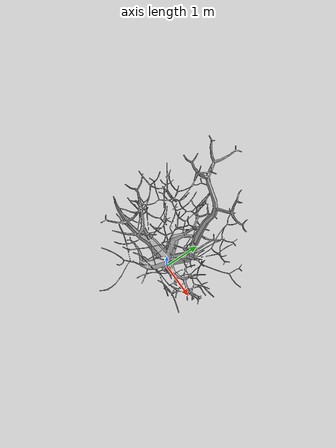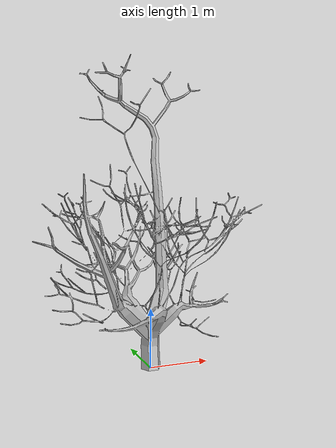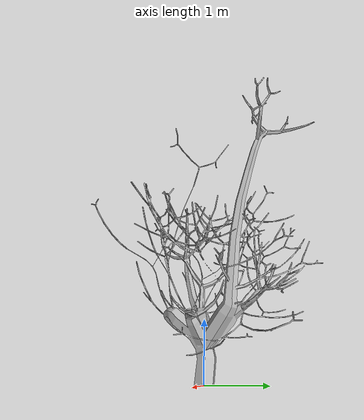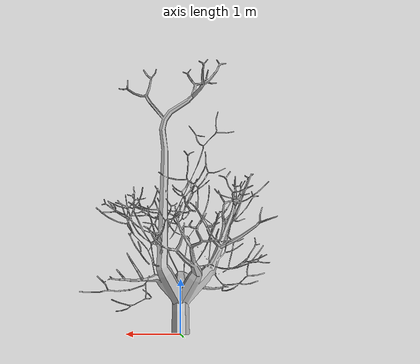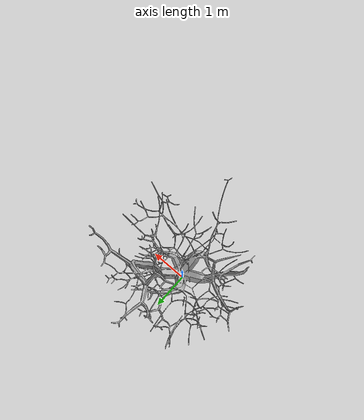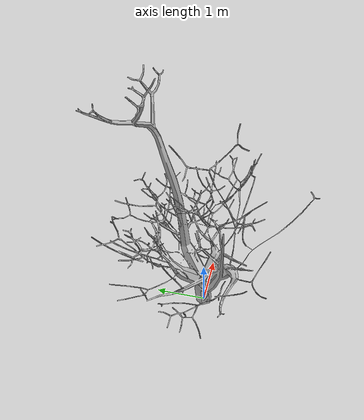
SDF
<?xml version="1.0" ?>
<sdf version="1.6">
  <model name="random_tree_3">
    <static>true</static>
    <link name="link">
      <visual name="visual">
        <geometry>
          <mesh>
            <uri>model://random_tree_3/meshes/random_tree_3.dae</uri>
          </mesh>
        </geometry>
      </visual>
      <collision name="collision">
        <geometry>
          <mesh>
            <uri>model://random_tree_3/meshes/random_tree_3.dae</uri>
          </mesh>
        </geometry>
      </collision>
    </link>
  </model>
</sdf>
